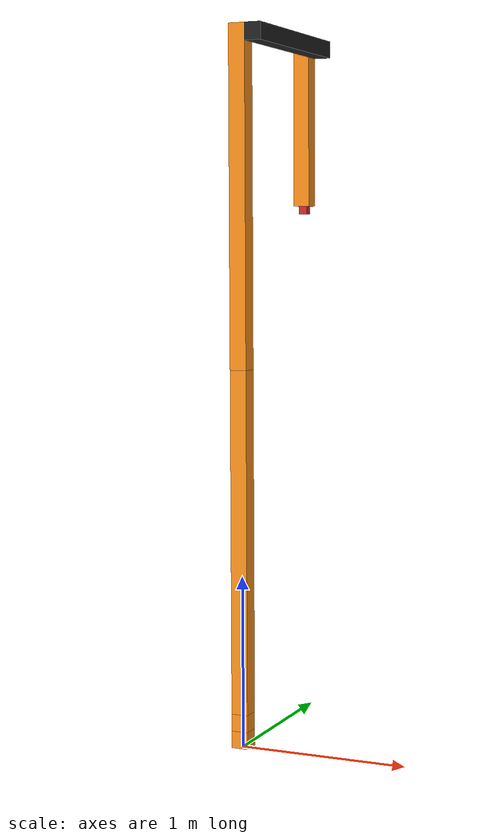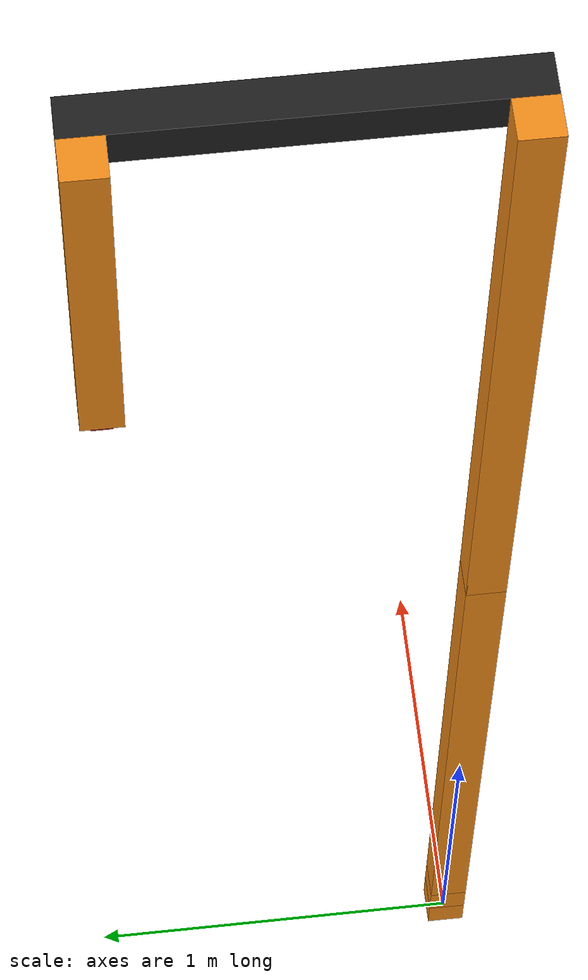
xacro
<?xml version="1.0"?>
<!-- Revolute-Revolute Manipulator -->
<robot name="calibrator" xmlns:xacro="http://www.ros.org/wiki/xacro">

  <!-- Constants for robot dimensions -->
  <xacro:property name="PI" value="3.1415926535897931"/>
  <xacro:property name="mass" value="1" /> <!-- arbitrary value for mass -->
  <xacro:property name="width" value="0.1" /> <!-- Square dimensions (widthxwidth) of beams -->
  <xacro:property name="height1" value="2" /> <!-- Link 1 -->
  <xacro:property name="height2" value="1" /> <!-- Link 2 -->
  <xacro:property name="height3" value="1" /> <!-- Link 3 -->
  <xacro:property name="camera_link" value="0.05" /> <!-- Size of square 'camera' box -->
  <xacro:property name="axel_offset" value="0.05" /> <!-- Space btw top of beam and the each joint -->

  <!-- Import all Gazebo-customization elements, including Gazebo colors -->
  <xacro:include filename="$(find calibrator_description)/urdf/calibrator.gazebo" />
  <!-- Import Rviz colors -->
  <xacro:include filename="$(find calibrator_description)/urdf/materials.xacro" />

  <!-- Used for fixing robot to Gazebo 'base_link' -->
  <link name="base_link">
    <collision>
      <origin xyz="0 0 ${width/2}" rpy="0 0 0"/>
      <geometry>
      	<box size="${width} ${width} ${width}"/>
      </geometry>
    </collision>

    <visual>
      <origin xyz="0 0 ${width/2}" rpy="0 0 0"/>
      <geometry>
      	<box size="${width} ${width} ${width}"/>
      </geometry>
      <material name="orange"/>
    </visual>

    <inertial>
      <origin xyz="0 0 ${width/2}" rpy="0 0 0"/>
      <mass value="${mass*1000}"/>
      <inertia
	  ixx="${mass / 12.0 * (width*width + width*width)}" ixy="0.0" ixz="0.0"
	  iyy="${mass / 12.0 * (width*width + width*width)}" iyz="0.0"
	  izz="${mass / 12.0 * (width*width + width*width)}"/>
    </inertial>
  </link>

  <link name="world" />
  <joint name="joint_fixed" type="fixed">
    <origin xyz="0 0 0" rpy="0 0 0" />
    <parent link="world"/>
    <child link="base_link"/>
  </joint>

  <!--xacro:include filename="$(find calibrator_description)/urdf/checkerboard.xacro" /-->
  <joint name="joint_forward_backward" type="continuous">
    <origin xyz="0 0 ${width}" rpy="0 0 0"/>
    <parent link="base_link"/>
    <child link="link_cube"/>
    <axis xyz="1 0 0"/>
  </joint>

  <link name="link_cube">
    <collision>
      <origin xyz="0 0 ${width/2}" rpy="0 0 0"/>
      <geometry>
      	<box size="${width} ${width} ${width}"/>
      </geometry>
    </collision>

    <visual>
      <origin xyz="0 0 ${width/2}" rpy="0 0 0"/>
      <geometry>
      	<box size="${width} ${width} ${width}"/>
      </geometry>
      <material name="orange"/>
    </visual>

    <inertial>
      <origin xyz="0 0 ${width/2}" rpy="0 0 0"/>
      <mass value="${mass*100}"/>
      <inertia
	  ixx="${mass / 12.0 * (width*width + width*width)}" ixy="0.0" ixz="0.0"
	  iyy="${mass / 12.0 * (width*width + width*width)}" iyz="0.0"
	  izz="${mass / 12.0 * (width*width + width*width)}"/>
    </inertial>
  </link>

  <joint name="joint_left_right" type="continuous">
    <origin xyz="0 0 ${width}" rpy="0 0 0"/>
    <parent link="link_cube"/>
    <child link="link0"/>
    <axis xyz="0 1 0"/>
  </joint>

  <link name="link0">
    <collision>
      <origin xyz="0 0 ${height1/2}" rpy="0 0 0"/>
      <geometry>
      	<box size="${width} ${width} ${height1}"/>
      </geometry>
    </collision>

    <visual>
      <origin xyz="0 0 ${height1/2}" rpy="0 0 0"/>
      <geometry>
      	<box size="${width} ${width} ${height1}"/>
      </geometry>
      <material name="orange"/>
    </visual>

    <inertial>
      <origin xyz="0 0 ${height1/2}" rpy="0 0 0"/>
      <mass value="${mass}"/>
      <inertia
	  ixx="${mass / 12.0 * (width*width + height1*height1)}" ixy="0.0" ixz="0.0"
	  iyy="${mass / 12.0 * (height1*height1 + width*width)}" iyz="0.0"
	  izz="${mass / 12.0 * (width*width + width*width)}"/>
    </inertial>
  </link>

  <joint name="joint0" type="prismatic">
    <parent link="link0"/>
    <child link="link1"/>
    <origin xyz="0 0 ${height1 - axel_offset}" rpy="0 0 0"/>
    <axis xyz="0 0 1"/>
    <dynamics damping="0.1"/>
    <limit lower="${-height1}" upper="0" effort="1000" velocity="1.0" />
  </joint>

  <link name="link1">
    <collision>
      <origin xyz="0 0 ${height1}" rpy="0 0 0"/>
      <geometry>
      	<box size="${width} ${width} ${height1*2}"/>
      </geometry>
    </collision>

    <visual>
      <origin xyz="0 0 ${height1/2}" rpy="0 0 0"/>
      <geometry>
      	<box size="${width} ${width} ${height1}"/>
      </geometry>
      <material name="orange"/>
    </visual>

    <inertial>
      <origin xyz="0 0 ${height1/2}" rpy="0 0 0"/>
      <mass value="${mass}"/>
      <inertia
	  ixx="${mass / 12.0 * (width*width + height1*height1)}" ixy="0.0" ixz="0.0"
	  iyy="${mass / 12.0 * (height1*height1 + width*width)}" iyz="0.0"
	  izz="${mass / 12.0 * (width*width + width*width)}"/>
    </inertial>
  </link>

  <joint name="joint1" type="continuous">
    <parent link="link1"/>
    <child link="link2"/>
    <origin xyz="${width} 0 ${height1 - axel_offset}" rpy="0 ${-pi/2} ${-pi/2}"/>
    <axis xyz="0 0 1"/>
  </joint>

  <link name="link2">
    <collision>
      <origin xyz="0 0 ${height2/2 - axel_offset}" rpy="0 0 0"/>
      <geometry>
	<box size="${width} ${width} ${height2}"/>
      </geometry>
    </collision>

    <visual>
      <origin xyz="0 0 ${height2/2 - axel_offset}" rpy="0 0 0"/>
      <geometry>
	<box size="${width} ${width} ${height2}"/>
      </geometry>
      <material name="black"/>
    </visual>

    <inertial>
      <origin xyz="0 0 ${height2/2 - axel_offset}" rpy="0 0 0"/>
      <mass value="${mass}"/>
      <inertia
	  ixx="${mass / 12.0 * (width*width + height2*height2)}" ixy="0.0" ixz="0.0"
	  iyy="${mass / 12.0 * (height2*height2 + width*width)}" iyz="0.0"
	  izz="${mass / 12.0 * (width*width + width*width)}"/>
    </inertial>
  </link>

  <joint name="joint2" type="continuous">
    <parent link="link2"/>
    <child link="link3"/>
    <origin xyz="0 ${-width} ${height2 - axel_offset*2}" rpy="0 ${-pi/2} 0"/>
    <axis xyz="0 1 0"/>
  </joint>

  <link name="link3">
    <collision>
      <origin xyz="0 0 ${height3/2 - axel_offset}" rpy="0 0 0"/>
      <geometry>
	<box size="${width} ${width} ${height3}"/>
      </geometry>
    </collision>

    <visual>
      <origin xyz="0 0 ${height3/2 - axel_offset}" rpy="0 0 0"/>
      <geometry>
	<box size="${width} ${width} ${height3}"/>
      </geometry>
      <material name="orange"/>
    </visual>

    <inertial>
      <origin xyz="0 0 ${height3/2 - axel_offset}" rpy="0 0 0"/>
      <mass value="${mass}"/>
      <inertia
	  ixx="${mass / 12.0 * (width*width + height3*height3)}" ixy="0.0" ixz="0.0"
	  iyy="${mass / 12.0 * (height3*height3 + width*width)}" iyz="0.0"
	  izz="${mass / 12.0 * (width*width + width*width)}"/>
    </inertial>
  </link>

  <joint name="camera_joint" type="fixed">
    <axis xyz="0 1 0" />
    <origin xyz="0 0 ${height3 - axel_offset/2}" rpy="0 ${-pi/2} ${pi}"/>
    <parent link="link3"/>
    <child link="camera_link"/>
  </joint>

  <link name="camera_link">
    <collision>
      <origin xyz="0 0 0" rpy="0 0 0"/>
      <geometry>
	<box size="${camera_link} ${camera_link} ${camera_link}"/>
      </geometry>
    </collision>

    <visual>
      <origin xyz="0 0 0" rpy="0 0 0"/>
      <geometry>
	<box size="${camera_link} ${camera_link} ${camera_link}"/>
      </geometry>
      <material name="red"/>
    </visual>

    <inertial>
      <mass value="1e-5" />
      <origin xyz="0 0 0" rpy="0 0 0"/>
      <inertia ixx="1e-6" ixy="0" ixz="0" iyy="1e-6" iyz="0" izz="1e-6" />
    </inertial>
  </link>

  <joint name="camera_optical_joint" type="fixed">
    <origin xyz="0 0 0" rpy="${-pi/2} 0 ${-pi/2}"/>
    <parent link="camera_link"/>
    <child link="camera_link_optical"/>
  </joint>

  <link name="camera_link_optical">
  </link>

  <transmission name="tran_lr">
    <type>transmission_interface/SimpleTransmission</type>
    <joint name="joint_left_right">
      <hardwareInterface>hardware_interface/EffortJointInterface</hardwareInterface>
    </joint>
    <actuator name="motor_lr">
      <hardwareInterface>hardware_interface/EffortJointInterface</hardwareInterface>
      <mechanicalReduction>1</mechanicalReduction>
    </actuator>
  </transmission>

  <transmission name="tran_fb">
    <type>transmission_interface/SimpleTransmission</type>
    <joint name="joint_forward_backward">
      <hardwareInterface>hardware_interface/EffortJointInterface</hardwareInterface>
    </joint>
    <actuator name="motor_fb">
      <hardwareInterface>hardware_interface/EffortJointInterface</hardwareInterface>
      <mechanicalReduction>1</mechanicalReduction>
    </actuator>
  </transmission>

  <transmission name="tran0">
    <type>transmission_interface/SimpleTransmission</type>
    <joint name="joint0">
      <hardwareInterface>hardware_interface/EffortJointInterface</hardwareInterface>
    </joint>
    <actuator name="motor0">
      <hardwareInterface>hardware_interface/EffortJointInterface</hardwareInterface>
      <mechanicalReduction>1</mechanicalReduction>
    </actuator>
  </transmission>

  <transmission name="tran1">
    <type>transmission_interface/SimpleTransmission</type>
    <joint name="joint1">
      <hardwareInterface>hardware_interface/EffortJointInterface</hardwareInterface>
    </joint>
    <actuator name="motor1">
      <hardwareInterface>hardware_interface/EffortJointInterface</hardwareInterface>
      <mechanicalReduction>1</mechanicalReduction>
    </actuator>
  </transmission>

  <transmission name="tran2">
    <type>transmission_interface/SimpleTransmission</type>
    <joint name="joint2">
      <hardwareInterface>hardware_interface/EffortJointInterface</hardwareInterface>
    </joint>
    <actuator name="motor2">
      <hardwareInterface>hardware_interface/EffortJointInterface</hardwareInterface>
      <mechanicalReduction>1</mechanicalReduction>
    </actuator>
  </transmission>

</robot>
